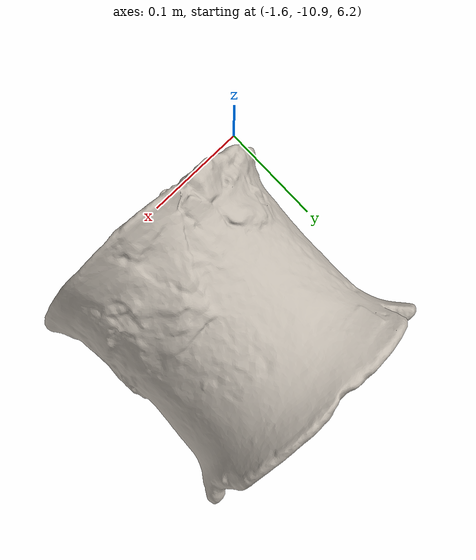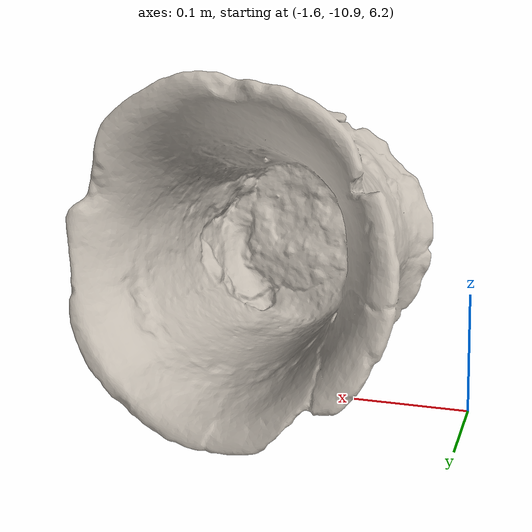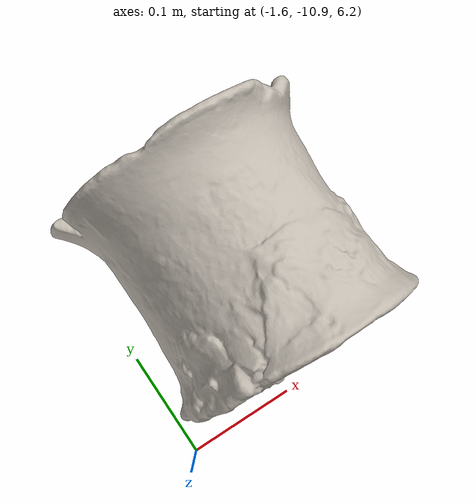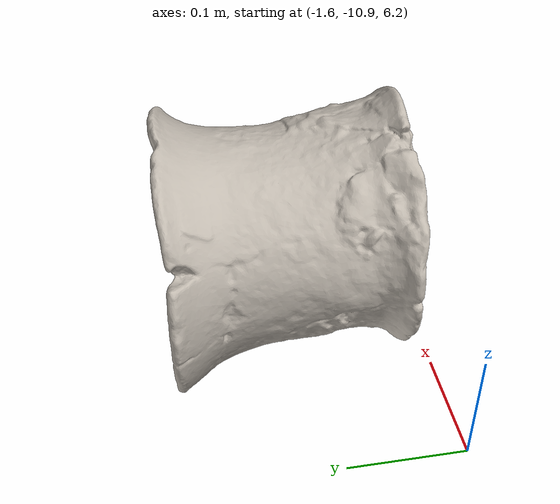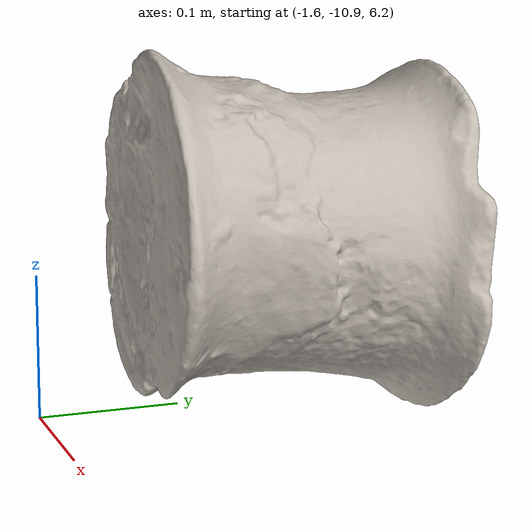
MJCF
<mujoco model="efcae774d5eb42bfb72db0f7f592cc92">
  <default>
    <default class="visual">
      <geom group="2" type="mesh" contype="0" conaffinity="0"/>
    </default>
    <default class="collision">
      <geom group="3" type="mesh"/>
    </default>
  </default>
  <asset>
    <texture type="2d" name="3D_Model" file="3D_Model.png"/>
    <material name="3D_Model" texture="3D_Model" specular="0.4000000000000001" shininess="0.001"/>
    <mesh file="efcae774d5eb42bfb72db0f7f592cc92/efcae774d5eb42bfb72db0f7f592cc92.obj"/>
    <mesh file="efcae774d5eb42bfb72db0f7f592cc92/efcae774d5eb42bfb72db0f7f592cc92_collision_0.obj"/>
    <mesh file="efcae774d5eb42bfb72db0f7f592cc92/efcae774d5eb42bfb72db0f7f592cc92_collision_1.obj"/>
    <mesh file="efcae774d5eb42bfb72db0f7f592cc92/efcae774d5eb42bfb72db0f7f592cc92_collision_2.obj"/>
    <mesh file="efcae774d5eb42bfb72db0f7f592cc92/efcae774d5eb42bfb72db0f7f592cc92_collision_3.obj"/>
    <mesh file="efcae774d5eb42bfb72db0f7f592cc92/efcae774d5eb42bfb72db0f7f592cc92_collision_4.obj"/>
    <mesh file="efcae774d5eb42bfb72db0f7f592cc92/efcae774d5eb42bfb72db0f7f592cc92_collision_5.obj"/>
    <mesh file="efcae774d5eb42bfb72db0f7f592cc92/efcae774d5eb42bfb72db0f7f592cc92_collision_6.obj"/>
    <mesh file="efcae774d5eb42bfb72db0f7f592cc92/efcae774d5eb42bfb72db0f7f592cc92_collision_7.obj"/>
    <mesh file="efcae774d5eb42bfb72db0f7f592cc92/efcae774d5eb42bfb72db0f7f592cc92_collision_8.obj"/>
    <mesh file="efcae774d5eb42bfb72db0f7f592cc92/efcae774d5eb42bfb72db0f7f592cc92_collision_9.obj"/>
    <mesh file="efcae774d5eb42bfb72db0f7f592cc92/efcae774d5eb42bfb72db0f7f592cc92_collision_10.obj"/>
    <mesh file="efcae774d5eb42bfb72db0f7f592cc92/efcae774d5eb42bfb72db0f7f592cc92_collision_11.obj"/>
    <mesh file="efcae774d5eb42bfb72db0f7f592cc92/efcae774d5eb42bfb72db0f7f592cc92_collision_12.obj"/>
    <mesh file="efcae774d5eb42bfb72db0f7f592cc92/efcae774d5eb42bfb72db0f7f592cc92_collision_13.obj"/>
    <mesh file="efcae774d5eb42bfb72db0f7f592cc92/efcae774d5eb42bfb72db0f7f592cc92_collision_14.obj"/>
    <mesh file="efcae774d5eb42bfb72db0f7f592cc92/efcae774d5eb42bfb72db0f7f592cc92_collision_15.obj"/>
    <mesh file="efcae774d5eb42bfb72db0f7f592cc92/efcae774d5eb42bfb72db0f7f592cc92_collision_16.obj"/>
    <mesh file="efcae774d5eb42bfb72db0f7f592cc92/efcae774d5eb42bfb72db0f7f592cc92_collision_17.obj"/>
    <mesh file="efcae774d5eb42bfb72db0f7f592cc92/efcae774d5eb42bfb72db0f7f592cc92_collision_18.obj"/>
    <mesh file="efcae774d5eb42bfb72db0f7f592cc92/efcae774d5eb42bfb72db0f7f592cc92_collision_19.obj"/>
    <mesh file="efcae774d5eb42bfb72db0f7f592cc92/efcae774d5eb42bfb72db0f7f592cc92_collision_20.obj"/>
    <mesh file="efcae774d5eb42bfb72db0f7f592cc92/efcae774d5eb42bfb72db0f7f592cc92_collision_21.obj"/>
    <mesh file="efcae774d5eb42bfb72db0f7f592cc92/efcae774d5eb42bfb72db0f7f592cc92_collision_22.obj"/>
    <mesh file="efcae774d5eb42bfb72db0f7f592cc92/efcae774d5eb42bfb72db0f7f592cc92_collision_23.obj"/>
    <mesh file="efcae774d5eb42bfb72db0f7f592cc92/efcae774d5eb42bfb72db0f7f592cc92_collision_24.obj"/>
    <mesh file="efcae774d5eb42bfb72db0f7f592cc92/efcae774d5eb42bfb72db0f7f592cc92_collision_25.obj"/>
    <mesh file="efcae774d5eb42bfb72db0f7f592cc92/efcae774d5eb42bfb72db0f7f592cc92_collision_26.obj"/>
    <mesh file="efcae774d5eb42bfb72db0f7f592cc92/efcae774d5eb42bfb72db0f7f592cc92_collision_27.obj"/>
    <mesh file="efcae774d5eb42bfb72db0f7f592cc92/efcae774d5eb42bfb72db0f7f592cc92_collision_28.obj"/>
    <mesh file="efcae774d5eb42bfb72db0f7f592cc92/efcae774d5eb42bfb72db0f7f592cc92_collision_29.obj"/>
    <mesh file="efcae774d5eb42bfb72db0f7f592cc92/efcae774d5eb42bfb72db0f7f592cc92_collision_30.obj"/>
    <mesh file="efcae774d5eb42bfb72db0f7f592cc92/efcae774d5eb42bfb72db0f7f592cc92_collision_31.obj"/>
    <mesh file="efcae774d5eb42bfb72db0f7f592cc92/efcae774d5eb42bfb72db0f7f592cc92_collision_32.obj"/>
    <mesh file="efcae774d5eb42bfb72db0f7f592cc92/efcae774d5eb42bfb72db0f7f592cc92_collision_33.obj"/>
    <mesh file="efcae774d5eb42bfb72db0f7f592cc92/efcae774d5eb42bfb72db0f7f592cc92_collision_34.obj"/>
    <mesh file="efcae774d5eb42bfb72db0f7f592cc92/efcae774d5eb42bfb72db0f7f592cc92_collision_35.obj"/>
    <mesh file="efcae774d5eb42bfb72db0f7f592cc92/efcae774d5eb42bfb72db0f7f592cc92_collision_36.obj"/>
    <mesh file="efcae774d5eb42bfb72db0f7f592cc92/efcae774d5eb42bfb72db0f7f592cc92_collision_37.obj"/>
    <mesh file="efcae774d5eb42bfb72db0f7f592cc92/efcae774d5eb42bfb72db0f7f592cc92_collision_38.obj"/>
    <mesh file="efcae774d5eb42bfb72db0f7f592cc92/efcae774d5eb42bfb72db0f7f592cc92_collision_39.obj"/>
    <mesh file="efcae774d5eb42bfb72db0f7f592cc92/efcae774d5eb42bfb72db0f7f592cc92_collision_40.obj"/>
    <mesh file="efcae774d5eb42bfb72db0f7f592cc92/efcae774d5eb42bfb72db0f7f592cc92_collision_41.obj"/>
    <mesh file="efcae774d5eb42bfb72db0f7f592cc92/efcae774d5eb42bfb72db0f7f592cc92_collision_42.obj"/>
    <mesh file="efcae774d5eb42bfb72db0f7f592cc92/efcae774d5eb42bfb72db0f7f592cc92_collision_43.obj"/>
    <mesh file="efcae774d5eb42bfb72db0f7f592cc92/efcae774d5eb42bfb72db0f7f592cc92_collision_44.obj"/>
    <mesh file="efcae774d5eb42bfb72db0f7f592cc92/efcae774d5eb42bfb72db0f7f592cc92_collision_45.obj"/>
    <mesh file="efcae774d5eb42bfb72db0f7f592cc92/efcae774d5eb42bfb72db0f7f592cc92_collision_46.obj"/>
    <mesh file="efcae774d5eb42bfb72db0f7f592cc92/efcae774d5eb42bfb72db0f7f592cc92_collision_47.obj"/>
    <mesh file="efcae774d5eb42bfb72db0f7f592cc92/efcae774d5eb42bfb72db0f7f592cc92_collision_48.obj"/>
    <mesh file="efcae774d5eb42bfb72db0f7f592cc92/efcae774d5eb42bfb72db0f7f592cc92_collision_49.obj"/>
    <mesh file="efcae774d5eb42bfb72db0f7f592cc92/efcae774d5eb42bfb72db0f7f592cc92_collision_50.obj"/>
    <mesh file="efcae774d5eb42bfb72db0f7f592cc92/efcae774d5eb42bfb72db0f7f592cc92_collision_51.obj"/>
    <mesh file="efcae774d5eb42bfb72db0f7f592cc92/efcae774d5eb42bfb72db0f7f592cc92_collision_52.obj"/>
    <mesh file="efcae774d5eb42bfb72db0f7f592cc92/efcae774d5eb42bfb72db0f7f592cc92_collision_53.obj"/>
    <mesh file="efcae774d5eb42bfb72db0f7f592cc92/efcae774d5eb42bfb72db0f7f592cc92_collision_54.obj"/>
    <mesh file="efcae774d5eb42bfb72db0f7f592cc92/efcae774d5eb42bfb72db0f7f592cc92_collision_55.obj"/>
    <mesh file="efcae774d5eb42bfb72db0f7f592cc92/efcae774d5eb42bfb72db0f7f592cc92_collision_56.obj"/>
    <mesh file="efcae774d5eb42bfb72db0f7f592cc92/efcae774d5eb42bfb72db0f7f592cc92_collision_57.obj"/>
    <mesh file="efcae774d5eb42bfb72db0f7f592cc92/efcae774d5eb42bfb72db0f7f592cc92_collision_58.obj"/>
    <mesh file="efcae774d5eb42bfb72db0f7f592cc92/efcae774d5eb42bfb72db0f7f592cc92_collision_59.obj"/>
    <mesh file="efcae774d5eb42bfb72db0f7f592cc92/efcae774d5eb42bfb72db0f7f592cc92_collision_60.obj"/>
    <mesh file="efcae774d5eb42bfb72db0f7f592cc92/efcae774d5eb42bfb72db0f7f592cc92_collision_61.obj"/>
    <mesh file="efcae774d5eb42bfb72db0f7f592cc92/efcae774d5eb42bfb72db0f7f592cc92_collision_62.obj"/>
    <mesh file="efcae774d5eb42bfb72db0f7f592cc92/efcae774d5eb42bfb72db0f7f592cc92_collision_63.obj"/>
    <mesh file="efcae774d5eb42bfb72db0f7f592cc92/efcae774d5eb42bfb72db0f7f592cc92_collision_64.obj"/>
    <mesh file="efcae774d5eb42bfb72db0f7f592cc92/efcae774d5eb42bfb72db0f7f592cc92_collision_65.obj"/>
    <mesh file="efcae774d5eb42bfb72db0f7f592cc92/efcae774d5eb42bfb72db0f7f592cc92_collision_66.obj"/>
    <mesh file="efcae774d5eb42bfb72db0f7f592cc92/efcae774d5eb42bfb72db0f7f592cc92_collision_67.obj"/>
    <mesh file="efcae774d5eb42bfb72db0f7f592cc92/efcae774d5eb42bfb72db0f7f592cc92_collision_68.obj"/>
    <mesh file="efcae774d5eb42bfb72db0f7f592cc92/efcae774d5eb42bfb72db0f7f592cc92_collision_69.obj"/>
    <mesh file="efcae774d5eb42bfb72db0f7f592cc92/efcae774d5eb42bfb72db0f7f592cc92_collision_70.obj"/>
    <mesh file="efcae774d5eb42bfb72db0f7f592cc92/efcae774d5eb42bfb72db0f7f592cc92_collision_71.obj"/>
    <mesh file="efcae774d5eb42bfb72db0f7f592cc92/efcae774d5eb42bfb72db0f7f592cc92_collision_72.obj"/>
    <mesh file="efcae774d5eb42bfb72db0f7f592cc92/efcae774d5eb42bfb72db0f7f592cc92_collision_73.obj"/>
    <mesh file="efcae774d5eb42bfb72db0f7f592cc92/efcae774d5eb42bfb72db0f7f592cc92_collision_74.obj"/>
    <mesh file="efcae774d5eb42bfb72db0f7f592cc92/efcae774d5eb42bfb72db0f7f592cc92_collision_75.obj"/>
    <mesh file="efcae774d5eb42bfb72db0f7f592cc92/efcae774d5eb42bfb72db0f7f592cc92_collision_76.obj"/>
    <mesh file="efcae774d5eb42bfb72db0f7f592cc92/efcae774d5eb42bfb72db0f7f592cc92_collision_77.obj"/>
    <mesh file="efcae774d5eb42bfb72db0f7f592cc92/efcae774d5eb42bfb72db0f7f592cc92_collision_78.obj"/>
    <mesh file="efcae774d5eb42bfb72db0f7f592cc92/efcae774d5eb42bfb72db0f7f592cc92_collision_79.obj"/>
    <mesh file="efcae774d5eb42bfb72db0f7f592cc92/efcae774d5eb42bfb72db0f7f592cc92_collision_80.obj"/>
    <mesh file="efcae774d5eb42bfb72db0f7f592cc92/efcae774d5eb42bfb72db0f7f592cc92_collision_81.obj"/>
    <mesh file="efcae774d5eb42bfb72db0f7f592cc92/efcae774d5eb42bfb72db0f7f592cc92_collision_82.obj"/>
    <mesh file="efcae774d5eb42bfb72db0f7f592cc92/efcae774d5eb42bfb72db0f7f592cc92_collision_83.obj"/>
    <mesh file="efcae774d5eb42bfb72db0f7f592cc92/efcae774d5eb42bfb72db0f7f592cc92_collision_84.obj"/>
    <mesh file="efcae774d5eb42bfb72db0f7f592cc92/efcae774d5eb42bfb72db0f7f592cc92_collision_85.obj"/>
    <mesh file="efcae774d5eb42bfb72db0f7f592cc92/efcae774d5eb42bfb72db0f7f592cc92_collision_86.obj"/>
    <mesh file="efcae774d5eb42bfb72db0f7f592cc92/efcae774d5eb42bfb72db0f7f592cc92_collision_87.obj"/>
    <mesh file="efcae774d5eb42bfb72db0f7f592cc92/efcae774d5eb42bfb72db0f7f592cc92_collision_88.obj"/>
    <mesh file="efcae774d5eb42bfb72db0f7f592cc92/efcae774d5eb42bfb72db0f7f592cc92_collision_89.obj"/>
    <mesh file="efcae774d5eb42bfb72db0f7f592cc92/efcae774d5eb42bfb72db0f7f592cc92_collision_90.obj"/>
    <mesh file="efcae774d5eb42bfb72db0f7f592cc92/efcae774d5eb42bfb72db0f7f592cc92_collision_91.obj"/>
    <mesh file="efcae774d5eb42bfb72db0f7f592cc92/efcae774d5eb42bfb72db0f7f592cc92_collision_92.obj"/>
    <mesh file="efcae774d5eb42bfb72db0f7f592cc92/efcae774d5eb42bfb72db0f7f592cc92_collision_93.obj"/>
    <mesh file="efcae774d5eb42bfb72db0f7f592cc92/efcae774d5eb42bfb72db0f7f592cc92_collision_94.obj"/>
  </asset>
  <worldbody>
    <geom material="3D_Model" mesh="efcae774d5eb42bfb72db0f7f592cc92" class="visual" mass="1"/>
    <geom mesh="efcae774d5eb42bfb72db0f7f592cc92_collision_0" rgba="0.11368670277809578 0.8791422265885811 0.00015663470882698594 1" class="collision" density="100"/>
    <geom mesh="efcae774d5eb42bfb72db0f7f592cc92_collision_1" rgba="0.9864646975893202 0.6108522783276604 0.5495083022688649 1" class="collision" density="100"/>
    <geom mesh="efcae774d5eb42bfb72db0f7f592cc92_collision_2" rgba="0.4211245497088304 0.005300958990065108 0.06190386745513965 1" class="collision" density="100"/>
    <geom mesh="efcae774d5eb42bfb72db0f7f592cc92_collision_3" rgba="0.012966730190499876 0.7181721952987024 0.535332225931594 1" class="collision" density="100"/>
    <geom mesh="efcae774d5eb42bfb72db0f7f592cc92_collision_4" rgba="0.8488946178450043 0.04133428774051351 0.2640765094503039 1" class="collision" density="100"/>
    <geom mesh="efcae774d5eb42bfb72db0f7f592cc92_collision_5" rgba="0.9140458976498503 0.1772527714121308 0.105182648622282 1" class="collision" density="100"/>
    <geom mesh="efcae774d5eb42bfb72db0f7f592cc92_collision_6" rgba="0.0853871612208763 0.4765039671169192 0.062575586612864 1" class="collision" density="100"/>
    <geom mesh="efcae774d5eb42bfb72db0f7f592cc92_collision_7" rgba="0.8458735057037168 0.736763145133269 0.47811891592504463 1" class="collision" density="100"/>
    <geom mesh="efcae774d5eb42bfb72db0f7f592cc92_collision_8" rgba="0.26882299684564537 0.9173294414698471 0.20241042151025446 1" class="collision" density="100"/>
    <geom mesh="efcae774d5eb42bfb72db0f7f592cc92_collision_9" rgba="0.3771517015572585 0.3846366857603165 0.5356843371835386 1" class="collision" density="100"/>
    <geom mesh="efcae774d5eb42bfb72db0f7f592cc92_collision_10" rgba="0.15369065928024095 0.4671843515100106 0.693868776594221 1" class="collision" density="100"/>
    <geom mesh="efcae774d5eb42bfb72db0f7f592cc92_collision_11" rgba="0.3550825866316101 0.10221881179572667 0.42538478018350245 1" class="collision" density="100"/>
    <geom mesh="efcae774d5eb42bfb72db0f7f592cc92_collision_12" rgba="0.7947952196795585 0.512803252906024 0.256421705890978 1" class="collision" density="100"/>
    <geom mesh="efcae774d5eb42bfb72db0f7f592cc92_collision_13" rgba="0.6393784184870147 0.7222778682401445 0.6650396656941914 1" class="collision" density="100"/>
    <geom mesh="efcae774d5eb42bfb72db0f7f592cc92_collision_14" rgba="0.7905126443656413 0.9103360765715843 0.2729544685254557 1" class="collision" density="100"/>
    <geom mesh="efcae774d5eb42bfb72db0f7f592cc92_collision_15" rgba="0.23004602255924667 0.3920805653705187 0.6989959162151778 1" class="collision" density="100"/>
    <geom mesh="efcae774d5eb42bfb72db0f7f592cc92_collision_16" rgba="0.7511034482903889 0.6153557091065216 0.38956430998885194 1" class="collision" density="100"/>
    <geom mesh="efcae774d5eb42bfb72db0f7f592cc92_collision_17" rgba="0.7049272155924485 0.8136786536628444 0.9640564409419451 1" class="collision" density="100"/>
    <geom mesh="efcae774d5eb42bfb72db0f7f592cc92_collision_18" rgba="0.9696186825664629 0.866982571132486 0.9125845776641811 1" class="collision" density="100"/>
    <geom mesh="efcae774d5eb42bfb72db0f7f592cc92_collision_19" rgba="0.24697584970707842 0.6783509578433956 0.0876174644686768 1" class="collision" density="100"/>
    <geom mesh="efcae774d5eb42bfb72db0f7f592cc92_collision_20" rgba="0.2991404478408761 0.8523213587276469 0.7414537243755033 1" class="collision" density="100"/>
    <geom mesh="efcae774d5eb42bfb72db0f7f592cc92_collision_21" rgba="0.5247564641173718 0.6456193463103844 0.021960149333486556 1" class="collision" density="100"/>
    <geom mesh="efcae774d5eb42bfb72db0f7f592cc92_collision_22" rgba="0.7730936926721379 0.7201056203953565 0.6755856256460279 1" class="collision" density="100"/>
    <geom mesh="efcae774d5eb42bfb72db0f7f592cc92_collision_23" rgba="0.12010303180318305 0.11067619595173539 0.039325419953886054 1" class="collision" density="100"/>
    <geom mesh="efcae774d5eb42bfb72db0f7f592cc92_collision_24" rgba="0.765147365800102 0.31622468892274314 0.4084110420523588 1" class="collision" density="100"/>
    <geom mesh="efcae774d5eb42bfb72db0f7f592cc92_collision_25" rgba="0.5994927060853625 0.03603695399595541 0.17992903141601047 1" class="collision" density="100"/>
    <geom mesh="efcae774d5eb42bfb72db0f7f592cc92_collision_26" rgba="0.6454491440388104 0.7386144120210099 0.6239940430891278 1" class="collision" density="100"/>
    <geom mesh="efcae774d5eb42bfb72db0f7f592cc92_collision_27" rgba="0.49355593134151887 0.5339865174245078 0.5350226719531015 1" class="collision" density="100"/>
    <geom mesh="efcae774d5eb42bfb72db0f7f592cc92_collision_28" rgba="0.02711484070194925 0.3886724004562625 0.09271073034942068 1" class="collision" density="100"/>
    <geom mesh="efcae774d5eb42bfb72db0f7f592cc92_collision_29" rgba="0.1780669032151314 0.43933685044862747 0.6786810515540238 1" class="collision" density="100"/>
    <geom mesh="efcae774d5eb42bfb72db0f7f592cc92_collision_30" rgba="0.00754697457762199 0.47526375374574514 0.5347870712709082 1" class="collision" density="100"/>
    <geom mesh="efcae774d5eb42bfb72db0f7f592cc92_collision_31" rgba="0.4757463000841483 0.9127566596414085 0.47627634592493506 1" class="collision" density="100"/>
    <geom mesh="efcae774d5eb42bfb72db0f7f592cc92_collision_32" rgba="0.5529341920436451 0.2782063909769059 0.8867855952346604 1" class="collision" density="100"/>
    <geom mesh="efcae774d5eb42bfb72db0f7f592cc92_collision_33" rgba="0.1099853493199191 0.563705127212995 0.49340372951305067 1" class="collision" density="100"/>
    <geom mesh="efcae774d5eb42bfb72db0f7f592cc92_collision_34" rgba="0.5855249367419596 0.7472129553766732 0.6172293451446016 1" class="collision" density="100"/>
    <geom mesh="efcae774d5eb42bfb72db0f7f592cc92_collision_35" rgba="0.7335414029728881 0.5840938502280981 0.9608552899282283 1" class="collision" density="100"/>
    <geom mesh="efcae774d5eb42bfb72db0f7f592cc92_collision_36" rgba="0.7014952010047464 0.560365412707564 0.07046470524352377 1" class="collision" density="100"/>
    <geom mesh="efcae774d5eb42bfb72db0f7f592cc92_collision_37" rgba="0.6854345142629352 0.6000306514647891 0.485632499560379 1" class="collision" density="100"/>
    <geom mesh="efcae774d5eb42bfb72db0f7f592cc92_collision_38" rgba="0.6579805029060756 0.8864443102564038 0.7378375099503088 1" class="collision" density="100"/>
    <geom mesh="efcae774d5eb42bfb72db0f7f592cc92_collision_39" rgba="0.6274583426625223 0.8396067079056011 0.22332551669916267 1" class="collision" density="100"/>
    <geom mesh="efcae774d5eb42bfb72db0f7f592cc92_collision_40" rgba="0.009940879432109861 0.8814318721333658 0.6859851043202658 1" class="collision" density="100"/>
    <geom mesh="efcae774d5eb42bfb72db0f7f592cc92_collision_41" rgba="0.11677125798104093 0.4469165241263783 0.9409764577934242 1" class="collision" density="100"/>
    <geom mesh="efcae774d5eb42bfb72db0f7f592cc92_collision_42" rgba="0.46630300756054355 0.22096949972950652 0.7351560032790571 1" class="collision" density="100"/>
    <geom mesh="efcae774d5eb42bfb72db0f7f592cc92_collision_43" rgba="0.6127004104788636 0.030857244716290477 0.34526913738546183 1" class="collision" density="100"/>
    <geom mesh="efcae774d5eb42bfb72db0f7f592cc92_collision_44" rgba="0.49670242383475727 0.19875691665747397 0.27745236881343494 1" class="collision" density="100"/>
    <geom mesh="efcae774d5eb42bfb72db0f7f592cc92_collision_45" rgba="0.7020074781617727 0.02864592548988998 0.47124138685682326 1" class="collision" density="100"/>
    <geom mesh="efcae774d5eb42bfb72db0f7f592cc92_collision_46" rgba="0.5970694242144725 0.2861044972984528 0.8135984765897883 1" class="collision" density="100"/>
    <geom mesh="efcae774d5eb42bfb72db0f7f592cc92_collision_47" rgba="0.670347764801946 0.6792985344799825 0.9821659665109842 1" class="collision" density="100"/>
    <geom mesh="efcae774d5eb42bfb72db0f7f592cc92_collision_48" rgba="0.06373518600256034 0.7223856996233496 0.29046139524581893 1" class="collision" density="100"/>
    <geom mesh="efcae774d5eb42bfb72db0f7f592cc92_collision_49" rgba="0.0316710775620862 0.6090058929147121 0.7107728374609312 1" class="collision" density="100"/>
    <geom mesh="efcae774d5eb42bfb72db0f7f592cc92_collision_50" rgba="0.026217526239140754 0.1343693745993133 0.9324095122572613 1" class="collision" density="100"/>
    <geom mesh="efcae774d5eb42bfb72db0f7f592cc92_collision_51" rgba="0.8808489045390094 0.112625173729068 0.3415619557028087 1" class="collision" density="100"/>
    <geom mesh="efcae774d5eb42bfb72db0f7f592cc92_collision_52" rgba="0.25714849957658437 0.8282854960188977 0.8523647696577313 1" class="collision" density="100"/>
    <geom mesh="efcae774d5eb42bfb72db0f7f592cc92_collision_53" rgba="0.6217094570090558 0.144529834058018 0.9880023402833511 1" class="collision" density="100"/>
    <geom mesh="efcae774d5eb42bfb72db0f7f592cc92_collision_54" rgba="0.4732157895235086 0.9135531550209137 0.02629887494623462 1" class="collision" density="100"/>
    <geom mesh="efcae774d5eb42bfb72db0f7f592cc92_collision_55" rgba="0.8808056753780377 0.42091490365493023 0.9800641108383872 1" class="collision" density="100"/>
    <geom mesh="efcae774d5eb42bfb72db0f7f592cc92_collision_56" rgba="0.657639858840866 0.6604901466249525 0.9890573415186441 1" class="collision" density="100"/>
    <geom mesh="efcae774d5eb42bfb72db0f7f592cc92_collision_57" rgba="0.07959838777079409 0.15844384525711575 0.15417281981987374 1" class="collision" density="100"/>
    <geom mesh="efcae774d5eb42bfb72db0f7f592cc92_collision_58" rgba="0.34541268251994417 0.5446031957952193 0.28042933174190643 1" class="collision" density="100"/>
    <geom mesh="efcae774d5eb42bfb72db0f7f592cc92_collision_59" rgba="0.5303063817524333 0.4469152654120464 0.3178261077529926 1" class="collision" density="100"/>
    <geom mesh="efcae774d5eb42bfb72db0f7f592cc92_collision_60" rgba="0.5017758314462618 0.3163296583517625 0.8861343877046056 1" class="collision" density="100"/>
    <geom mesh="efcae774d5eb42bfb72db0f7f592cc92_collision_61" rgba="0.6364170325484352 0.40004019066743823 0.6730567838013188 1" class="collision" density="100"/>
    <geom mesh="efcae774d5eb42bfb72db0f7f592cc92_collision_62" rgba="0.48026841376045193 0.7073100656696429 0.7559597915623189 1" class="collision" density="100"/>
    <geom mesh="efcae774d5eb42bfb72db0f7f592cc92_collision_63" rgba="0.22382136760400317 0.029021353713970965 0.33170162009729864 1" class="collision" density="100"/>
    <geom mesh="efcae774d5eb42bfb72db0f7f592cc92_collision_64" rgba="0.24108890626404722 0.56256799213988 0.7169971800863729 1" class="collision" density="100"/>
    <geom mesh="efcae774d5eb42bfb72db0f7f592cc92_collision_65" rgba="0.8473419298418344 0.05471901041269822 0.7128211538058796 1" class="collision" density="100"/>
    <geom mesh="efcae774d5eb42bfb72db0f7f592cc92_collision_66" rgba="0.971671665907857 0.8157653605121125 0.006473634782524718 1" class="collision" density="100"/>
    <geom mesh="efcae774d5eb42bfb72db0f7f592cc92_collision_67" rgba="0.8920844697595184 0.2574226606520511 0.12045881258182822 1" class="collision" density="100"/>
    <geom mesh="efcae774d5eb42bfb72db0f7f592cc92_collision_68" rgba="0.09893462291566923 0.4317073796729872 0.312134502052518 1" class="collision" density="100"/>
    <geom mesh="efcae774d5eb42bfb72db0f7f592cc92_collision_69" rgba="0.9771711863879594 0.3995723365773455 0.08322185987740227 1" class="collision" density="100"/>
    <geom mesh="efcae774d5eb42bfb72db0f7f592cc92_collision_70" rgba="0.8912223477446196 0.09362809278700845 0.82863527851245 1" class="collision" density="100"/>
    <geom mesh="efcae774d5eb42bfb72db0f7f592cc92_collision_71" rgba="0.1960112320261933 0.5407202400366279 0.46444243824327547 1" class="collision" density="100"/>
    <geom mesh="efcae774d5eb42bfb72db0f7f592cc92_collision_72" rgba="0.6546618007283607 0.363413628593136 0.8587570819296612 1" class="collision" density="100"/>
    <geom mesh="efcae774d5eb42bfb72db0f7f592cc92_collision_73" rgba="0.39078770376677163 0.03654790865663393 0.2415743179119766 1" class="collision" density="100"/>
    <geom mesh="efcae774d5eb42bfb72db0f7f592cc92_collision_74" rgba="0.19639024691629048 0.3378575541695691 0.1783181028262213 1" class="collision" density="100"/>
    <geom mesh="efcae774d5eb42bfb72db0f7f592cc92_collision_75" rgba="0.2729048907690115 0.4166400015295908 0.247060013911938 1" class="collision" density="100"/>
    <geom mesh="efcae774d5eb42bfb72db0f7f592cc92_collision_76" rgba="0.4861665948659808 0.5727980084121892 0.3628540141972666 1" class="collision" density="100"/>
    <geom mesh="efcae774d5eb42bfb72db0f7f592cc92_collision_77" rgba="0.29641422874333945 0.34945682262702205 0.664482361661507 1" class="collision" density="100"/>
    <geom mesh="efcae774d5eb42bfb72db0f7f592cc92_collision_78" rgba="0.8215977374966151 0.43869693793839515 0.02498102308559358 1" class="collision" density="100"/>
    <geom mesh="efcae774d5eb42bfb72db0f7f592cc92_collision_79" rgba="0.13705851311384654 0.6423527573385821 0.07437231577191294 1" class="collision" density="100"/>
    <geom mesh="efcae774d5eb42bfb72db0f7f592cc92_collision_80" rgba="0.35068214247258356 0.1725340698818062 0.6629882477966579 1" class="collision" density="100"/>
    <geom mesh="efcae774d5eb42bfb72db0f7f592cc92_collision_81" rgba="0.7530864173538573 0.45083295488544006 0.3434200482885078 1" class="collision" density="100"/>
    <geom mesh="efcae774d5eb42bfb72db0f7f592cc92_collision_82" rgba="0.36537335387538306 0.965243678843057 0.7445872533610729 1" class="collision" density="100"/>
    <geom mesh="efcae774d5eb42bfb72db0f7f592cc92_collision_83" rgba="0.48736002099427056 0.13549580457407595 0.7095166587584942 1" class="collision" density="100"/>
    <geom mesh="efcae774d5eb42bfb72db0f7f592cc92_collision_84" rgba="0.2585219691449331 0.38698360969214074 0.9455538607013559 1" class="collision" density="100"/>
    <geom mesh="efcae774d5eb42bfb72db0f7f592cc92_collision_85" rgba="0.7148224755558789 0.8324601314636425 0.6990368528629122 1" class="collision" density="100"/>
    <geom mesh="efcae774d5eb42bfb72db0f7f592cc92_collision_86" rgba="0.12337102521282384 0.781635667262255 0.6511396581050404 1" class="collision" density="100"/>
    <geom mesh="efcae774d5eb42bfb72db0f7f592cc92_collision_87" rgba="0.7561218140908682 0.31640474403594177 0.7189006905907722 1" class="collision" density="100"/>
    <geom mesh="efcae774d5eb42bfb72db0f7f592cc92_collision_88" rgba="0.38994396417956023 0.27693767287373394 0.07083275202322148 1" class="collision" density="100"/>
    <geom mesh="efcae774d5eb42bfb72db0f7f592cc92_collision_89" rgba="0.7606661311209408 0.3942901260537722 0.6727649096796224 1" class="collision" density="100"/>
    <geom mesh="efcae774d5eb42bfb72db0f7f592cc92_collision_90" rgba="0.8726069366840282 0.952902621503168 0.4693019216309632 1" class="collision" density="100"/>
    <geom mesh="efcae774d5eb42bfb72db0f7f592cc92_collision_91" rgba="0.8022005157481441 0.64298750593342 0.7620971696233136 1" class="collision" density="100"/>
    <geom mesh="efcae774d5eb42bfb72db0f7f592cc92_collision_92" rgba="0.02858149803312171 0.33871406657206427 0.5982689704007198 1" class="collision" density="100"/>
    <geom mesh="efcae774d5eb42bfb72db0f7f592cc92_collision_93" rgba="0.1594261917216926 0.5859144401280699 0.2610185004538156 1" class="collision" density="100"/>
    <geom mesh="efcae774d5eb42bfb72db0f7f592cc92_collision_94" rgba="0.8651475347712033 0.9341744735657913 0.9765569477195785 1" class="collision" density="100"/>
  </worldbody>
</mujoco>
